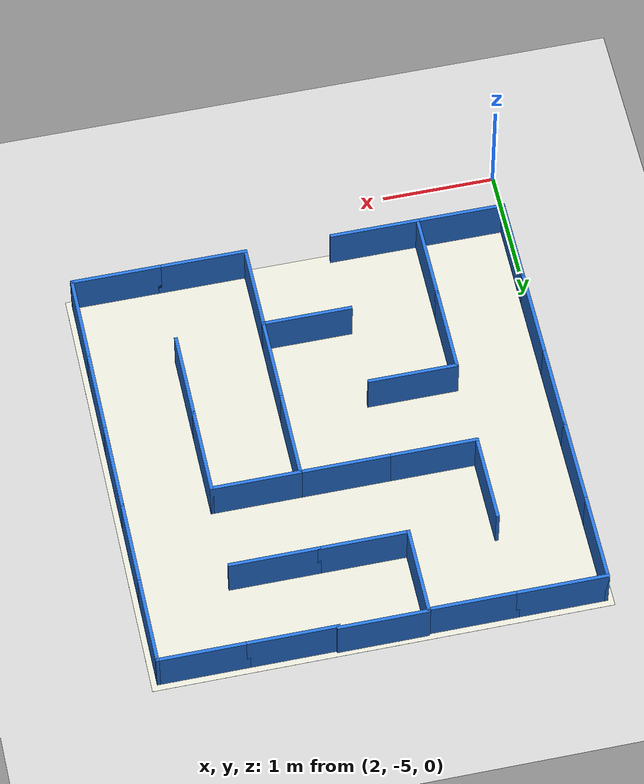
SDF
<?xml version="1.0" ?>
<sdf version="1.10">
<world name="nhom8_maze_ortho_5">
  <physics name="8ms" type="ignored">
    <max_step_size>0.008</max_step_size>
    <real_time_factor>1.0</real_time_factor>
  </physics>
  <plugin filename="gz-sim-physics-system"   name="gz::sim::systems::Physics"/>
  <plugin filename="gz-sim-user-commands-system" name="gz::sim::systems::UserCommands"/>
  <plugin filename="gz-sim-scene-broadcaster-system" name="gz::sim::systems::SceneBroadcaster"/>
  <plugin filename="gz-sim-sensors-system" name="gz::sim::systems::Sensors">
    <render_engine>ogre2</render_engine>
  </plugin>

  <light type="directional" name="sun">
    <cast_shadows>true</cast_shadows>
    <pose>0 0 10 0 0 0</pose>
    <diffuse>1 1 1 1</diffuse>
    <specular>0.5 0.5 0.5 1</specular>
    <attenuation><range>1000</range><constant>0.9</constant>
      <linear>0.01</linear><quadratic>0.001</quadratic></attenuation>
    <direction>-0.5 0.1 -0.9</direction>
  </light>

  <model name="ground_plane">
    <static>true</static>
    <link name="link">
      <collision name="collision">
        <geometry><plane><normal>0 0 1</normal><size>50.0 50.0</size></plane></geometry>
        <surface><friction><ode><mu>40</mu></ode></friction></surface>
      </collision>
      <visual name="visual">
        <geometry><plane><normal>0 0 1</normal><size>50.0 50.0</size></plane></geometry>
        <material>
          <ambient>0.8 0.8 0.8 1</ambient><diffuse>0.8 0.8 0.8 1</diffuse>
          <specular>0.8 0.8 0.8 1</specular>
        </material>
      </visual>
    </link>
  </model>

  <!--  MAZE ortho_5 (family ortho)                -->
  <!--  walls: 35   wall bbox (local): (-1.9326, -1.9326, 1.9326, 1.9326)   -->
  <!--  openings: entrance=north@(0.003,1.933) hw=0.367  exit=south@(0.003,-1.933) hw=0.367   -->
  <!--  start (local): (-0.0076, 1.5924) yaw=-1.5725 rad  -->
  <!--  placement center: (3.9650, -2.5350)   -->

    <model name="wall_000">
      <static>true</static>
      <pose>2.047400 -1.000950 0.2000 0 0 1.570796</pose>
      <link name="link">
        <collision name="col">
          <geometry><box><size>0.7971 0.0300 0.4000</size></box></geometry>
        </collision>
        <visual name="vis">
          <geometry><box><size>0.7971 0.0300 0.4000</size></box></geometry>
          <material><ambient>0.15 0.45 0.85 1</ambient><diffuse>0.15 0.45 0.85 1</diffuse></material>
        </visual>
      </link>
    </model>

    <model name="wall_001">
      <static>true</static>
      <pose>2.047400 -1.768000 0.2000 0 0 1.570796</pose>
      <link name="link">
        <collision name="col">
          <geometry><box><size>0.7970 0.0300 0.4000</size></box></geometry>
        </collision>
        <visual name="vis">
          <geometry><box><size>0.7970 0.0300 0.4000</size></box></geometry>
          <material><ambient>0.15 0.45 0.85 1</ambient><diffuse>0.15 0.45 0.85 1</diffuse></material>
        </visual>
      </link>
    </model>

    <model name="wall_002">
      <static>true</static>
      <pose>2.047400 -2.535000 0.2000 0 0 1.570796</pose>
      <link name="link">
        <collision name="col">
          <geometry><box><size>0.7970 0.0300 0.4000</size></box></geometry>
        </collision>
        <visual name="vis">
          <geometry><box><size>0.7970 0.0300 0.4000</size></box></geometry>
          <material><ambient>0.15 0.45 0.85 1</ambient><diffuse>0.15 0.45 0.85 1</diffuse></material>
        </visual>
      </link>
    </model>

    <model name="wall_003">
      <static>true</static>
      <pose>2.047400 -3.302000 0.2000 0 0 1.570796</pose>
      <link name="link">
        <collision name="col">
          <geometry><box><size>0.7970 0.0300 0.4000</size></box></geometry>
        </collision>
        <visual name="vis">
          <geometry><box><size>0.7970 0.0300 0.4000</size></box></geometry>
          <material><ambient>0.15 0.45 0.85 1</ambient><diffuse>0.15 0.45 0.85 1</diffuse></material>
        </visual>
      </link>
    </model>

    <model name="wall_004">
      <static>true</static>
      <pose>2.047400 -4.069050 0.2000 0 0 1.570796</pose>
      <link name="link">
        <collision name="col">
          <geometry><box><size>0.7971 0.0300 0.4000</size></box></geometry>
        </collision>
        <visual name="vis">
          <geometry><box><size>0.7971 0.0300 0.4000</size></box></geometry>
          <material><ambient>0.15 0.45 0.85 1</ambient><diffuse>0.15 0.45 0.85 1</diffuse></material>
        </visual>
      </link>
    </model>

    <model name="wall_005">
      <static>true</static>
      <pose>2.814500 -1.768000 0.2000 0 0 1.570796</pose>
      <link name="link">
        <collision name="col">
          <geometry><box><size>0.7970 0.0300 0.4000</size></box></geometry>
        </collision>
        <visual name="vis">
          <geometry><box><size>0.7970 0.0300 0.4000</size></box></geometry>
          <material><ambient>0.15 0.45 0.85 1</ambient><diffuse>0.15 0.45 0.85 1</diffuse></material>
        </visual>
      </link>
    </model>

    <model name="wall_006">
      <static>true</static>
      <pose>2.814500 -3.302000 0.2000 0 0 1.570796</pose>
      <link name="link">
        <collision name="col">
          <geometry><box><size>0.7970 0.0300 0.4000</size></box></geometry>
        </collision>
        <visual name="vis">
          <geometry><box><size>0.7970 0.0300 0.4000</size></box></geometry>
          <material><ambient>0.15 0.45 0.85 1</ambient><diffuse>0.15 0.45 0.85 1</diffuse></material>
        </visual>
      </link>
    </model>

    <model name="wall_007">
      <static>true</static>
      <pose>2.814500 -4.069050 0.2000 0 0 1.570796</pose>
      <link name="link">
        <collision name="col">
          <geometry><box><size>0.7971 0.0300 0.4000</size></box></geometry>
        </collision>
        <visual name="vis">
          <geometry><box><size>0.7971 0.0300 0.4000</size></box></geometry>
          <material><ambient>0.15 0.45 0.85 1</ambient><diffuse>0.15 0.45 0.85 1</diffuse></material>
        </visual>
      </link>
    </model>

    <model name="wall_008">
      <static>true</static>
      <pose>3.581500 -1.000950 0.2000 0 0 1.570796</pose>
      <link name="link">
        <collision name="col">
          <geometry><box><size>0.7971 0.0300 0.4000</size></box></geometry>
        </collision>
        <visual name="vis">
          <geometry><box><size>0.7971 0.0300 0.4000</size></box></geometry>
          <material><ambient>0.15 0.45 0.85 1</ambient><diffuse>0.15 0.45 0.85 1</diffuse></material>
        </visual>
      </link>
    </model>

    <model name="wall_009">
      <static>true</static>
      <pose>4.348500 -2.535000 0.2000 0 0 1.570796</pose>
      <link name="link">
        <collision name="col">
          <geometry><box><size>0.7970 0.0300 0.4000</size></box></geometry>
        </collision>
        <visual name="vis">
          <geometry><box><size>0.7970 0.0300 0.4000</size></box></geometry>
          <material><ambient>0.15 0.45 0.85 1</ambient><diffuse>0.15 0.45 0.85 1</diffuse></material>
        </visual>
      </link>
    </model>

    <model name="wall_010">
      <static>true</static>
      <pose>4.348500 -3.302000 0.2000 0 0 1.570796</pose>
      <link name="link">
        <collision name="col">
          <geometry><box><size>0.7970 0.0300 0.4000</size></box></geometry>
        </collision>
        <visual name="vis">
          <geometry><box><size>0.7970 0.0300 0.4000</size></box></geometry>
          <material><ambient>0.15 0.45 0.85 1</ambient><diffuse>0.15 0.45 0.85 1</diffuse></material>
        </visual>
      </link>
    </model>

    <model name="wall_011">
      <static>true</static>
      <pose>4.348500 -4.069050 0.2000 0 0 1.570796</pose>
      <link name="link">
        <collision name="col">
          <geometry><box><size>0.7971 0.0300 0.4000</size></box></geometry>
        </collision>
        <visual name="vis">
          <geometry><box><size>0.7971 0.0300 0.4000</size></box></geometry>
          <material><ambient>0.15 0.45 0.85 1</ambient><diffuse>0.15 0.45 0.85 1</diffuse></material>
        </visual>
      </link>
    </model>

    <model name="wall_012">
      <static>true</static>
      <pose>5.115500 -2.535000 0.2000 0 0 1.570796</pose>
      <link name="link">
        <collision name="col">
          <geometry><box><size>0.7970 0.0300 0.4000</size></box></geometry>
        </collision>
        <visual name="vis">
          <geometry><box><size>0.7970 0.0300 0.4000</size></box></geometry>
          <material><ambient>0.15 0.45 0.85 1</ambient><diffuse>0.15 0.45 0.85 1</diffuse></material>
        </visual>
      </link>
    </model>

    <model name="wall_013">
      <static>true</static>
      <pose>5.115500 -3.302000 0.2000 0 0 1.570796</pose>
      <link name="link">
        <collision name="col">
          <geometry><box><size>0.7970 0.0300 0.4000</size></box></geometry>
        </collision>
        <visual name="vis">
          <geometry><box><size>0.7970 0.0300 0.4000</size></box></geometry>
          <material><ambient>0.15 0.45 0.85 1</ambient><diffuse>0.15 0.45 0.85 1</diffuse></material>
        </visual>
      </link>
    </model>

    <model name="wall_014">
      <static>true</static>
      <pose>5.882600 -1.000950 0.2000 0 0 1.570796</pose>
      <link name="link">
        <collision name="col">
          <geometry><box><size>0.7971 0.0300 0.4000</size></box></geometry>
        </collision>
        <visual name="vis">
          <geometry><box><size>0.7971 0.0300 0.4000</size></box></geometry>
          <material><ambient>0.15 0.45 0.85 1</ambient><diffuse>0.15 0.45 0.85 1</diffuse></material>
        </visual>
      </link>
    </model>

    <model name="wall_015">
      <static>true</static>
      <pose>5.882600 -1.768000 0.2000 0 0 1.570796</pose>
      <link name="link">
        <collision name="col">
          <geometry><box><size>0.7970 0.0300 0.4000</size></box></geometry>
        </collision>
        <visual name="vis">
          <geometry><box><size>0.7970 0.0300 0.4000</size></box></geometry>
          <material><ambient>0.15 0.45 0.85 1</ambient><diffuse>0.15 0.45 0.85 1</diffuse></material>
        </visual>
      </link>
    </model>

    <model name="wall_016">
      <static>true</static>
      <pose>5.882600 -2.535000 0.2000 0 0 1.570796</pose>
      <link name="link">
        <collision name="col">
          <geometry><box><size>0.7970 0.0300 0.4000</size></box></geometry>
        </collision>
        <visual name="vis">
          <geometry><box><size>0.7970 0.0300 0.4000</size></box></geometry>
          <material><ambient>0.15 0.45 0.85 1</ambient><diffuse>0.15 0.45 0.85 1</diffuse></material>
        </visual>
      </link>
    </model>

    <model name="wall_017">
      <static>true</static>
      <pose>5.882600 -3.302000 0.2000 0 0 1.570796</pose>
      <link name="link">
        <collision name="col">
          <geometry><box><size>0.7970 0.0300 0.4000</size></box></geometry>
        </collision>
        <visual name="vis">
          <geometry><box><size>0.7970 0.0300 0.4000</size></box></geometry>
          <material><ambient>0.15 0.45 0.85 1</ambient><diffuse>0.15 0.45 0.85 1</diffuse></material>
        </visual>
      </link>
    </model>

    <model name="wall_018">
      <static>true</static>
      <pose>5.882600 -4.069050 0.2000 0 0 1.570796</pose>
      <link name="link">
        <collision name="col">
          <geometry><box><size>0.7971 0.0300 0.4000</size></box></geometry>
        </collision>
        <visual name="vis">
          <geometry><box><size>0.7971 0.0300 0.4000</size></box></geometry>
          <material><ambient>0.15 0.45 0.85 1</ambient><diffuse>0.15 0.45 0.85 1</diffuse></material>
        </visual>
      </link>
    </model>

    <model name="wall_019">
      <static>true</static>
      <pose>2.430950 -0.617400 0.2000 0 0 0.000000</pose>
      <link name="link">
        <collision name="col">
          <geometry><box><size>0.7971 0.0300 0.4000</size></box></geometry>
        </collision>
        <visual name="vis">
          <geometry><box><size>0.7971 0.0300 0.4000</size></box></geometry>
          <material><ambient>0.15 0.45 0.85 1</ambient><diffuse>0.15 0.45 0.85 1</diffuse></material>
        </visual>
      </link>
    </model>

    <model name="wall_020">
      <static>true</static>
      <pose>3.198000 -0.617400 0.2000 0 0 0.000000</pose>
      <link name="link">
        <collision name="col">
          <geometry><box><size>0.7970 0.0300 0.4000</size></box></geometry>
        </collision>
        <visual name="vis">
          <geometry><box><size>0.7970 0.0300 0.4000</size></box></geometry>
          <material><ambient>0.15 0.45 0.85 1</ambient><diffuse>0.15 0.45 0.85 1</diffuse></material>
        </visual>
      </link>
    </model>

    <model name="wall_021">
      <static>true</static>
      <pose>4.732000 -0.617400 0.2000 0 0 0.000000</pose>
      <link name="link">
        <collision name="col">
          <geometry><box><size>0.7970 0.0300 0.4000</size></box></geometry>
        </collision>
        <visual name="vis">
          <geometry><box><size>0.7970 0.0300 0.4000</size></box></geometry>
          <material><ambient>0.15 0.45 0.85 1</ambient><diffuse>0.15 0.45 0.85 1</diffuse></material>
        </visual>
      </link>
    </model>

    <model name="wall_022">
      <static>true</static>
      <pose>5.499050 -0.617400 0.2000 0 0 0.000000</pose>
      <link name="link">
        <collision name="col">
          <geometry><box><size>0.7971 0.0300 0.4000</size></box></geometry>
        </collision>
        <visual name="vis">
          <geometry><box><size>0.7971 0.0300 0.4000</size></box></geometry>
          <material><ambient>0.15 0.45 0.85 1</ambient><diffuse>0.15 0.45 0.85 1</diffuse></material>
        </visual>
      </link>
    </model>

    <model name="wall_023">
      <static>true</static>
      <pose>3.965000 -1.384500 0.2000 0 0 0.000000</pose>
      <link name="link">
        <collision name="col">
          <geometry><box><size>0.7970 0.0300 0.4000</size></box></geometry>
        </collision>
        <visual name="vis">
          <geometry><box><size>0.7970 0.0300 0.4000</size></box></geometry>
          <material><ambient>0.15 0.45 0.85 1</ambient><diffuse>0.15 0.45 0.85 1</diffuse></material>
        </visual>
      </link>
    </model>

    <model name="wall_024">
      <static>true</static>
      <pose>4.732000 -1.384500 0.2000 0 0 0.000000</pose>
      <link name="link">
        <collision name="col">
          <geometry><box><size>0.7970 0.0300 0.4000</size></box></geometry>
        </collision>
        <visual name="vis">
          <geometry><box><size>0.7970 0.0300 0.4000</size></box></geometry>
          <material><ambient>0.15 0.45 0.85 1</ambient><diffuse>0.15 0.45 0.85 1</diffuse></material>
        </visual>
      </link>
    </model>

    <model name="wall_025">
      <static>true</static>
      <pose>3.198000 -2.151500 0.2000 0 0 0.000000</pose>
      <link name="link">
        <collision name="col">
          <geometry><box><size>0.7970 0.0300 0.4000</size></box></geometry>
        </collision>
        <visual name="vis">
          <geometry><box><size>0.7970 0.0300 0.4000</size></box></geometry>
          <material><ambient>0.15 0.45 0.85 1</ambient><diffuse>0.15 0.45 0.85 1</diffuse></material>
        </visual>
      </link>
    </model>

    <model name="wall_026">
      <static>true</static>
      <pose>3.965000 -2.151500 0.2000 0 0 0.000000</pose>
      <link name="link">
        <collision name="col">
          <geometry><box><size>0.7970 0.0300 0.4000</size></box></geometry>
        </collision>
        <visual name="vis">
          <geometry><box><size>0.7970 0.0300 0.4000</size></box></geometry>
          <material><ambient>0.15 0.45 0.85 1</ambient><diffuse>0.15 0.45 0.85 1</diffuse></material>
        </visual>
      </link>
    </model>

    <model name="wall_027">
      <static>true</static>
      <pose>4.732000 -2.151500 0.2000 0 0 0.000000</pose>
      <link name="link">
        <collision name="col">
          <geometry><box><size>0.7970 0.0300 0.4000</size></box></geometry>
        </collision>
        <visual name="vis">
          <geometry><box><size>0.7970 0.0300 0.4000</size></box></geometry>
          <material><ambient>0.15 0.45 0.85 1</ambient><diffuse>0.15 0.45 0.85 1</diffuse></material>
        </visual>
      </link>
    </model>

    <model name="wall_028">
      <static>true</static>
      <pose>3.198000 -2.918500 0.2000 0 0 0.000000</pose>
      <link name="link">
        <collision name="col">
          <geometry><box><size>0.7970 0.0300 0.4000</size></box></geometry>
        </collision>
        <visual name="vis">
          <geometry><box><size>0.7970 0.0300 0.4000</size></box></geometry>
          <material><ambient>0.15 0.45 0.85 1</ambient><diffuse>0.15 0.45 0.85 1</diffuse></material>
        </visual>
      </link>
    </model>

    <model name="wall_029">
      <static>true</static>
      <pose>3.965000 -3.685500 0.2000 0 0 0.000000</pose>
      <link name="link">
        <collision name="col">
          <geometry><box><size>0.7970 0.0300 0.4000</size></box></geometry>
        </collision>
        <visual name="vis">
          <geometry><box><size>0.7970 0.0300 0.4000</size></box></geometry>
          <material><ambient>0.15 0.45 0.85 1</ambient><diffuse>0.15 0.45 0.85 1</diffuse></material>
        </visual>
      </link>
    </model>

    <model name="wall_030">
      <static>true</static>
      <pose>2.430950 -4.452600 0.2000 0 0 0.000000</pose>
      <link name="link">
        <collision name="col">
          <geometry><box><size>0.7971 0.0300 0.4000</size></box></geometry>
        </collision>
        <visual name="vis">
          <geometry><box><size>0.7971 0.0300 0.4000</size></box></geometry>
          <material><ambient>0.15 0.45 0.85 1</ambient><diffuse>0.15 0.45 0.85 1</diffuse></material>
        </visual>
      </link>
    </model>

    <model name="wall_031">
      <static>true</static>
      <pose>3.198000 -4.452600 0.2000 0 0 0.000000</pose>
      <link name="link">
        <collision name="col">
          <geometry><box><size>0.7970 0.0300 0.4000</size></box></geometry>
        </collision>
        <visual name="vis">
          <geometry><box><size>0.7970 0.0300 0.4000</size></box></geometry>
          <material><ambient>0.15 0.45 0.85 1</ambient><diffuse>0.15 0.45 0.85 1</diffuse></material>
        </visual>
      </link>
    </model>

    <model name="wall_032">
      <static>true</static>
      <pose>4.732000 -4.452600 0.2000 0 0 0.000000</pose>
      <link name="link">
        <collision name="col">
          <geometry><box><size>0.7970 0.0300 0.4000</size></box></geometry>
        </collision>
        <visual name="vis">
          <geometry><box><size>0.7970 0.0300 0.4000</size></box></geometry>
          <material><ambient>0.15 0.45 0.85 1</ambient><diffuse>0.15 0.45 0.85 1</diffuse></material>
        </visual>
      </link>
    </model>

    <model name="wall_033">
      <static>true</static>
      <pose>5.499050 -4.452600 0.2000 0 0 0.000000</pose>
      <link name="link">
        <collision name="col">
          <geometry><box><size>0.7971 0.0300 0.4000</size></box></geometry>
        </collision>
        <visual name="vis">
          <geometry><box><size>0.7971 0.0300 0.4000</size></box></geometry>
          <material><ambient>0.15 0.45 0.85 1</ambient><diffuse>0.15 0.45 0.85 1</diffuse></material>
        </visual>
      </link>
    </model>

    <model name="wall_034">
      <static>true</static>
      <pose>3.968400 -0.602400 0.2000 0 0 0.000000</pose>
      <link name="link">
        <collision name="col">
          <geometry><box><size>0.7950 0.0300 0.4000</size></box></geometry>
        </collision>
        <visual name="vis">
          <geometry><box><size>0.7950 0.0300 0.4000</size></box></geometry>
          <material><ambient>0.15 0.45 0.85 1</ambient><diffuse>0.15 0.45 0.85 1</diffuse></material>
        </visual>
      </link>
    </model>

    <model name="floor">
      <static>true</static>
      <pose>3.965000 -2.535000 -0.02 0 0 0</pose>
      <link name="link">
        <collision name="col">
          <geometry><box><size>3.9652 3.9652 0.03</size></box></geometry>
        </collision>
        <visual name="vis">
          <geometry><box><size>3.9652 3.9652 0.03</size></box></geometry>
          <material><ambient>0.87 0.87 0.82 1</ambient><diffuse>0.87 0.87 0.82 1</diffuse></material>
        </visual>
      </link>
    </model>
</world>
</sdf>
